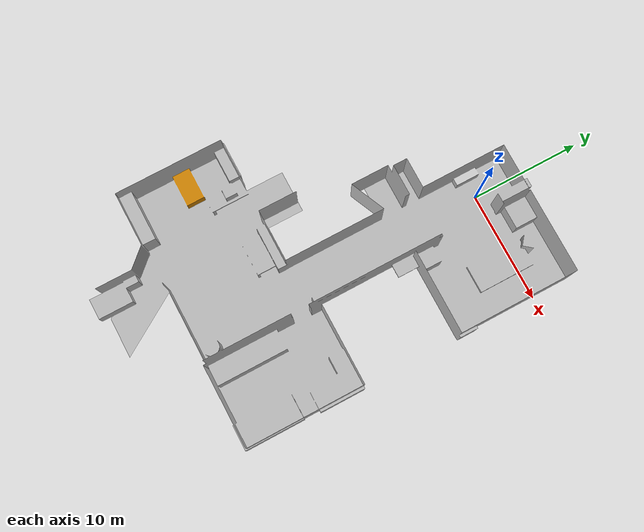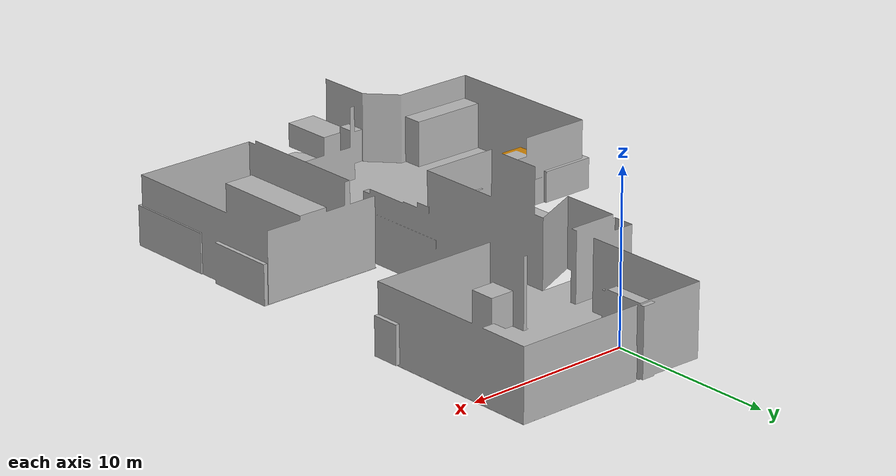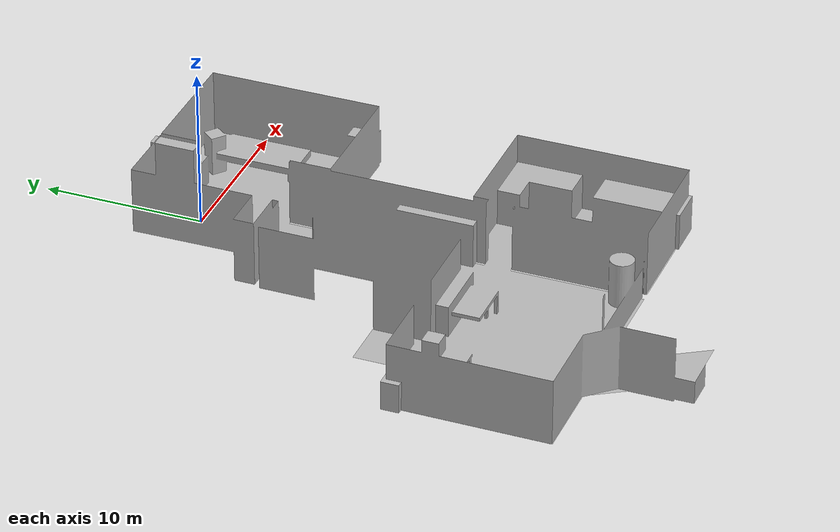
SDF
<sdf version="1.7">
 <world name="default">
  <light name="sun" type="directional">
   <pose>0 0 10 0 -0 0</pose>
   <diffuse>0.8 0.8 0.8 1</diffuse>
   <specular>0.2 0.2 0.2 1</specular>
   <attenuation>
    <range>1000</range>
    <constant>0.9</constant>
    <linear>0.01</linear>
    <quadratic>0.001</quadratic>
   </attenuation>
   <direction>-0.5 0.1 -0.9</direction>
   <spot><inner_angle>0</inner_angle><outer_angle>0</outer_angle><falloff>0</falloff></spot>
  </light>
  <gravity>0 0 -9.8</gravity>
  <magnetic_field>6e-06 2.3e-05 -4.2e-05</magnetic_field>
  <atmosphere type="adiabatic"/>
  <physics type="ode">
   <max_step_size>0.001</max_step_size>
   <real_time_factor>1</real_time_factor>
   <real_time_update_rate>1000</real_time_update_rate>
  </physics>
  <scene><ambient>0.4 0.4 0.4 1</ambient><background>0.7 0.7 0.7 1</background><shadows>1</shadows></scene>
  <audio><device>default</device></audio>
  <spherical_coordinates>
   <surface_model>EARTH_WGS84</surface_model>
   <latitude_deg>0</latitude_deg>
   <longitude_deg>0</longitude_deg>
   <elevation>0</elevation>
   <heading_deg>0</heading_deg>
  </spherical_coordinates>
  <model name="dyno_kontor_model">
   <static>1</static>
   <link name="dyno_kontor_link">
    <visual name="visual">
     <geometry>
      <mesh>
       <uri>/home/ros/src/src/dynobot/dynobot_gazebo_worlds/models/dyno_kontor/meshes/kontor_UV.dae</uri>
       <scale>1 1 1</scale>
      </mesh>
     </geometry>
    </visual>
    <collision name="collision">
     <geometry>
      <mesh>
       <uri>/home/ros/src/src/dynobot/dynobot_gazebo_worlds/models/dyno_kontor/meshes/kontor_UV.dae</uri>
       <scale>1 1 1</scale>
      </mesh>
     </geometry>
    </collision>
   </link>
   <pose>-1.64414 -14.285 0.757767 0 -0 0</pose>
  </model>
 </world>
</sdf>
